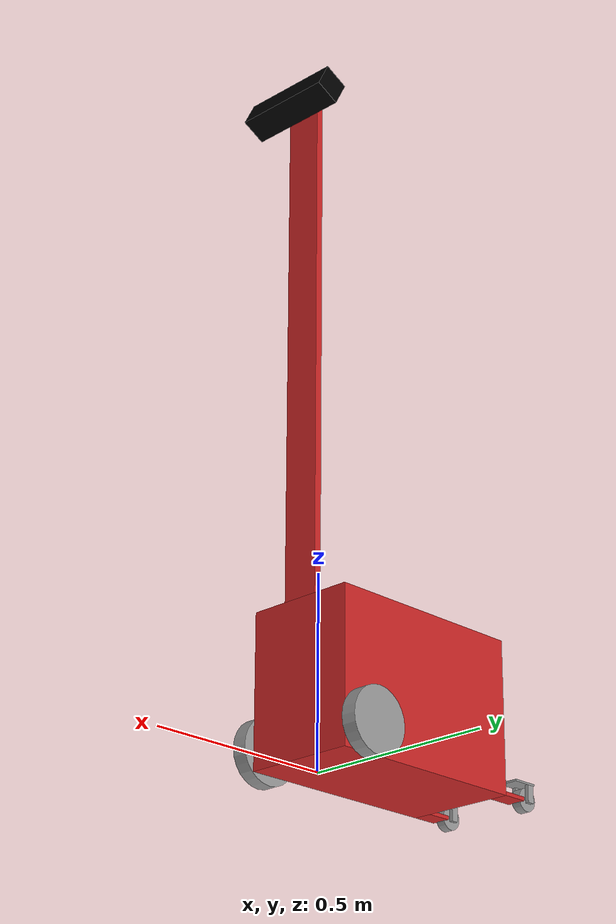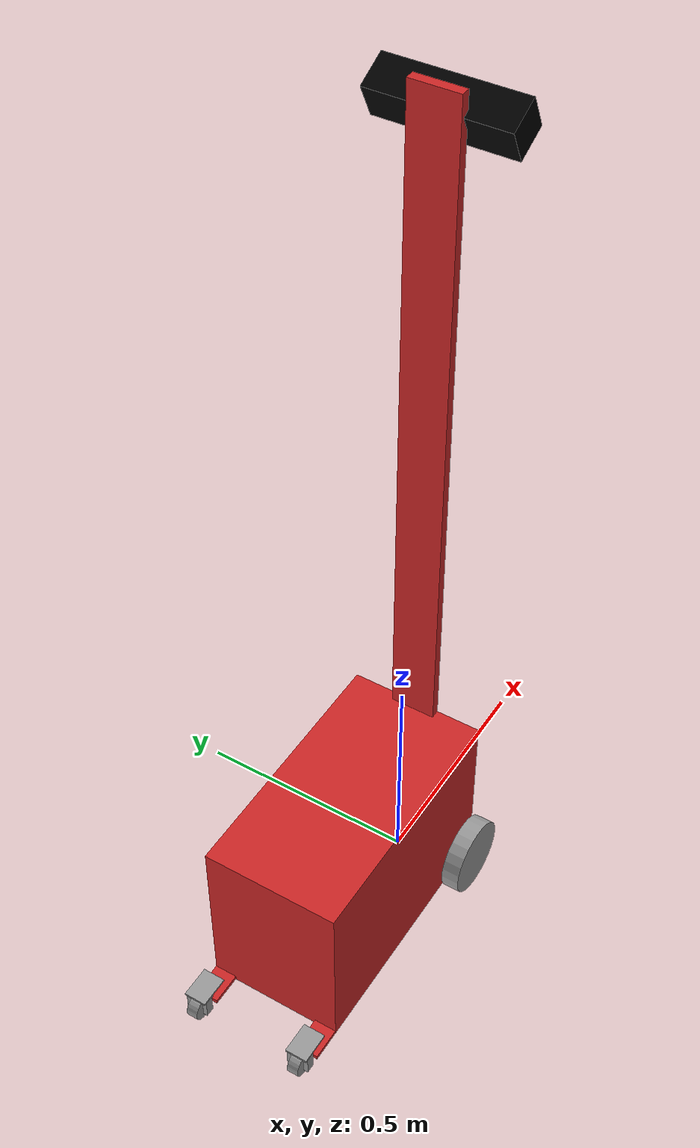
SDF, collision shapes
<?xml version='1.0'?>
<sdf version='1.6'>
  <model name='UVC_robot'>
    <link name='chassis'>
      <pose frame=''>-0.22 0 0.22 0 -0 0</pose>
      <inertial>
        <mass>70</mass>
        <pose frame=''>0 0 0 0 -0 0</pose>
        <inertia>
          <ixx>1.45833</ixx>
          <iyy>2.82858</iyy>
          <izz>2.42025</izz>
          <ixy>0</ixy>
          <ixz>0</ixz>
          <iyz>0</iyz>
        </inertia>
      </inertial>
      <self_collide>0</self_collide>
      <enable_wind>0</enable_wind>
      <kinematic>0</kinematic>
      <gravity>1</gravity>
      <visual name='ModelPreview_1::chassis::visual_1'>
        <pose frame=''>0.275 0 0.92 0 -0 0</pose>
        <geometry>
          <box>
            <size>0.02 0.1 1.44</size>
          </box>
        </geometry>
        <transparency>0</transparency>
        <cast_shadows>1</cast_shadows>
        <material>
          <shader type='vertex'>
            <normal_map>__default__</normal_map>
          </shader>
          <script>
            <name>Gazebo/Red</name>
            <uri>__default__</uri>
          </script>
          <ambient>0.3 0.3 0.3 1</ambient>
          <diffuse>0.7 0.7 0.7 1</diffuse>
          <specular>0.01 0.01 0.01 1</specular>
          <emissive>0 0 0 1</emissive>
        </material>
      </visual>
      <visual name='ModelPreview_1::chassis::visual_2'>
        <pose frame=''>-0.32 0.125 -0.195 0 -0 0</pose>
        <geometry>
          <box>
            <size>0.07 0.05 0.01</size>
          </box>
        </geometry>
        <transparency>0</transparency>
        <cast_shadows>1</cast_shadows>
        <material>
          <shader type='vertex'>
            <normal_map>__default__</normal_map>
          </shader>
          <script>
            <name>Gazebo/Red</name>
            <uri>__default__</uri>
          </script>
          <ambient>0.3 0.3 0.3 1</ambient>
          <diffuse>0.7 0.7 0.7 0.7</diffuse>
          <specular>0.01 0.01 0.01 1</specular>
          <emissive>0 0 0 1</emissive>
        </material>
      </visual>
      <visual name='visual'>
        <pose frame=''>0 0 0 0 -0 0</pose>
        <geometry>
          <box>
            <size>0.57 0.3 0.4</size>
          </box>
        </geometry>
        <transparency>0</transparency>
        <cast_shadows>1</cast_shadows>
        <material>
          <shader type='vertex'>
            <normal_map>__default__</normal_map>
          </shader>
          <script>
            <name>Gazebo/Grey</name>
            <uri>__default__</uri>
          </script>
          <ambient>0.3 0.3 0.3 1</ambient>
          <diffuse>0.7 0.7 0.7 1</diffuse>
          <specular>0.01 0.01 0.01 1</specular>
          <emissive>0 0 0 1</emissive>
        </material>
      </visual>
      <visual name='ModelPreview_1::chassis::visual_3'>
        <pose frame=''>-0.32 -0.125 -0.195 0 -0 0</pose>
        <geometry>
          <box>
            <size>0.07 0.05 0.01</size>
          </box>
        </geometry>
        <transparency>0</transparency>
        <cast_shadows>1</cast_shadows>
        <material>
          <shader type='vertex'>
            <normal_map>__default__</normal_map>
          </shader>
          <script>
            <name>Gazebo/Red</name>
            <uri>__default__</uri>
          </script>
          <ambient>0.3 0.3 0.3 1</ambient>
          <diffuse>0.7 0.7 0.7 1</diffuse>
          <specular>0.01 0.01 0.01 1</specular>
          <emissive>0 0 0 1</emissive>
        </material>
      </visual>
      <collision name='collision_2'>
        <laser_retro>0</laser_retro>
        <max_contacts>10</max_contacts>
        <pose frame=''>-0.32 -0.125 -0.195 0 -0 0</pose>
        <geometry>
          <box>
            <size>0.07 0.05 0.01</size>
          </box>
        </geometry>
        <surface>
          <friction>
            <ode>
              <mu>1</mu>
              <mu2>1</mu2>
              <fdir1>0 0 0</fdir1>
              <slip1>0</slip1>
              <slip2>0</slip2>
            </ode>
            <torsional>
              <coefficient>1</coefficient>
              <patch_radius>0</patch_radius>
              <surface_radius>0</surface_radius>
              <use_patch_radius>1</use_patch_radius>
              <ode>
                <slip>0</slip>
              </ode>
            </torsional>
          </friction>
          <bounce>
            <restitution_coefficient>0</restitution_coefficient>
            <threshold>1e+06</threshold>
          </bounce>
          <contact>
            <collide_without_contact>0</collide_without_contact>
            <collide_without_contact_bitmask>1</collide_without_contact_bitmask>
            <collide_bitmask>1</collide_bitmask>
            <ode>
              <soft_cfm>0</soft_cfm>
              <soft_erp>0.2</soft_erp>
              <kp>1e+13</kp>
              <kd>1</kd>
              <max_vel>0.01</max_vel>
              <min_depth>0</min_depth>
            </ode>
            <bullet>
              <split_impulse>1</split_impulse>
              <split_impulse_penetration_threshold>-0.01</split_impulse_penetration_threshold>
              <soft_cfm>0</soft_cfm>
              <soft_erp>0.2</soft_erp>
              <kp>1e+13</kp>
              <kd>1</kd>
            </bullet>
          </contact>
        </surface>
      </collision>
      <collision name='collision'>
        <laser_retro>0</laser_retro>
        <max_contacts>10</max_contacts>
        <pose frame=''>0 0 0 0 -0 0</pose>
        <geometry>
          <box>
            <size>0.57 0.3 0.4</size>
          </box>
        </geometry>
        <surface>
          <friction>
            <ode>
              <mu>1</mu>
              <mu2>1</mu2>
              <fdir1>0 0 0</fdir1>
              <slip1>0</slip1>
              <slip2>0</slip2>
            </ode>
            <torsional>
              <coefficient>1</coefficient>
              <patch_radius>0</patch_radius>
              <surface_radius>0</surface_radius>
              <use_patch_radius>1</use_patch_radius>
              <ode>
                <slip>0</slip>
              </ode>
            </torsional>
          </friction>
          <bounce>
            <restitution_coefficient>0</restitution_coefficient>
            <threshold>1e+06</threshold>
          </bounce>
          <contact>
            <collide_without_contact>0</collide_without_contact>
            <collide_without_contact_bitmask>1</collide_without_contact_bitmask>
            <collide_bitmask>1</collide_bitmask>
            <ode>
              <soft_cfm>0</soft_cfm>
              <soft_erp>0.2</soft_erp>
              <kp>1e+13</kp>
              <kd>1</kd>
              <max_vel>0.01</max_vel>
              <min_depth>0</min_depth>
            </ode>
            <bullet>
              <split_impulse>1</split_impulse>
              <split_impulse_penetration_threshold>-0.01</split_impulse_penetration_threshold>
              <soft_cfm>0</soft_cfm>
              <soft_erp>0.2</soft_erp>
              <kp>1e+13</kp>
              <kd>1</kd>
            </bullet>
          </contact>
        </surface>
      </collision>
      <collision name='collision_1'>
        <laser_retro>0</laser_retro>
        <max_contacts>10</max_contacts>
        <pose frame=''>0.275 0 0.92 0 -0 0</pose>
        <geometry>
          <box>
            <size>0.02 0.1 1.44</size>
          </box>
        </geometry>
        <surface>
          <friction>
            <ode>
              <mu>1</mu>
              <mu2>1</mu2>
              <fdir1>0 0 0</fdir1>
              <slip1>0</slip1>
              <slip2>0</slip2>
            </ode>
            <torsional>
              <coefficient>1</coefficient>
              <patch_radius>0</patch_radius>
              <surface_radius>0</surface_radius>
              <use_patch_radius>1</use_patch_radius>
              <ode>
                <slip>0</slip>
              </ode>
            </torsional>
          </friction>
          <bounce>
            <restitution_coefficient>0</restitution_coefficient>
            <threshold>1e+06</threshold>
          </bounce>
          <contact>
            <collide_without_contact>0</collide_without_contact>
            <collide_without_contact_bitmask>1</collide_without_contact_bitmask>
            <collide_bitmask>1</collide_bitmask>
            <ode>
              <soft_cfm>0</soft_cfm>
              <soft_erp>0.2</soft_erp>
              <kp>1e+13</kp>
              <kd>1</kd>
              <max_vel>0.01</max_vel>
              <min_depth>0</min_depth>
            </ode>
            <bullet>
              <split_impulse>1</split_impulse>
              <split_impulse_penetration_threshold>-0.01</split_impulse_penetration_threshold>
              <soft_cfm>0</soft_cfm>
              <soft_erp>0.2</soft_erp>
              <kp>1e+13</kp>
              <kd>1</kd>
            </bullet>
          </contact>
        </surface>
      </collision>
      <collision name='collision_3'>
        <laser_retro>0</laser_retro>
        <max_contacts>10</max_contacts>
        <pose frame=''>-0.32 0.125 -0.195 0 -0 0</pose>
        <geometry>
          <box>
            <size>0.07 0.05 0.01</size>
          </box>
        </geometry>
        <surface>
          <friction>
            <ode>
              <mu>1</mu>
              <mu2>1</mu2>
              <fdir1>0 0 0</fdir1>
              <slip1>0</slip1>
              <slip2>0</slip2>
            </ode>
            <torsional>
              <coefficient>1</coefficient>
              <patch_radius>0</patch_radius>
              <surface_radius>0</surface_radius>
              <use_patch_radius>1</use_patch_radius>
              <ode>
                <slip>0</slip>
              </ode>
            </torsional>
          </friction>
          <bounce>
            <restitution_coefficient>0</restitution_coefficient>
            <threshold>1e+06</threshold>
          </bounce>
          <contact>
            <collide_without_contact>0</collide_without_contact>
            <collide_without_contact_bitmask>1</collide_without_contact_bitmask>
            <collide_bitmask>1</collide_bitmask>
            <ode>
              <soft_cfm>0</soft_cfm>
              <soft_erp>0.2</soft_erp>
              <kp>1e+13</kp>
              <kd>1</kd>
              <max_vel>0.01</max_vel>
              <min_depth>0</min_depth>
            </ode>
            <bullet>
              <split_impulse>1</split_impulse>
              <split_impulse_penetration_threshold>-0.01</split_impulse_penetration_threshold>
              <soft_cfm>0</soft_cfm>
              <soft_erp>0.2</soft_erp>
              <kp>1e+13</kp>
              <kd>1</kd>
            </bullet>
          </contact>
        </surface>
      </collision>
    </link>
    <link name='kinect_camera'>
      <inertial>
        <mass>0.1</mass>
        <inertia>
          <ixx>1</ixx>
          <ixy>0</ixy>
          <ixz>0</ixz>
          <iyy>1</iyy>
          <iyz>0</iyz>
          <izz>1</izz>
        </inertia>
        <pose frame=''>0 0 0 0 -0 0</pose>
      </inertial>
      <sensor name='camera' type='depth'>
        <update_rate>20</update_rate>
        <camera name='__default__'>
          <horizontal_fov>1.0472</horizontal_fov>
          <image>
            <width>640</width>
            <height>480</height>
            <format>R8G8B8</format>
          </image>
          <clip>
            <near>0.05</near>
            <far>3</far>
          </clip>
        </camera>
        <plugin name='camera_plugin' filename='libgazebo_ros_openni_kinect.so'>
          <baseline>0.2</baseline>
          <alwaysOn>1</alwaysOn>
          <updateRate>0.0</updateRate>
          <cameraName>camera_ir</cameraName>
          <imageTopicName>/d435/color/image_raw</imageTopicName>
          <cameraInfoTopicName>/d435/color/camera_info</cameraInfoTopicName>
          <depthImageTopicName>/d435/depth/image_rect_raw</depthImageTopicName>
          <depthImageCameraInfoTopicName>/d435/depth/camera_info</depthImageCameraInfoTopicName>
          <pointCloudTopicName>/d435/depth/color/points</pointCloudTopicName>
          <frameName>d435_link</frameName>
          <pointCloudCutoff>0.5</pointCloudCutoff>
          <pointCloudCutoffMax>3.0</pointCloudCutoffMax>
          <distortionK1>0</distortionK1>
          <distortionK2>0</distortionK2>
          <distortionK3>0</distortionK3>
          <distortionT1>0</distortionT1>
          <distortionT2>0</distortionT2>
          <CxPrime>0</CxPrime>
          <Cx>0</Cx>
          <Cy>0</Cy>
          <focalLength>0</focalLength>
          <hackBaseline>0</hackBaseline>
        </plugin>
      </sensor>
      <self_collide>0</self_collide>
      <enable_wind>0</enable_wind>
      <kinematic>0</kinematic>
      <pose frame=''>0.1 0 1.8 0 1.105 0</pose>
      <gravity>1</gravity>
      <visual name='visual'>
        <geometry>
          <mesh>
            <uri>model://UVC_robot/meshes/kinect.dae</uri>
          </mesh>
        </geometry>
        <pose frame=''>0 0 0 0 -0 0</pose>
        <transparency>0</transparency>
        <cast_shadows>1</cast_shadows>
        <material>
          <shader type='vertex'>
            <normal_map>__default__</normal_map>
          </shader>
          <script>
            <name>ModelPreview_1::kinect_camera::visual_MATERIAL_</name>
            <uri>__default__</uri>
          </script>
          <ambient>0 0 0 1</ambient>
          <diffuse>0 0 0 1</diffuse>
          <specular>0 0 0 1</specular>
          <emissive>0 0 0 1</emissive>
        </material>
      </visual>
      <collision name='collision'>
        <laser_retro>0</laser_retro>
        <max_contacts>10</max_contacts>
        <pose frame=''>0 0 0 0 -0 0</pose>
        <geometry>
          <box>
            <size>0.073 0.276 0.072</size>
          </box>
        </geometry>
        <surface>
          <friction>
            <ode>
              <mu>1</mu>
              <mu2>1</mu2>
              <fdir1>0 0 0</fdir1>
              <slip1>0</slip1>
              <slip2>0</slip2>
            </ode>
            <torsional>
              <coefficient>1</coefficient>
              <patch_radius>0</patch_radius>
              <surface_radius>0</surface_radius>
              <use_patch_radius>1</use_patch_radius>
              <ode>
                <slip>0</slip>
              </ode>
            </torsional>
          </friction>
          <bounce>
            <restitution_coefficient>0</restitution_coefficient>
            <threshold>1e+06</threshold>
          </bounce>
          <contact>
            <collide_without_contact>0</collide_without_contact>
            <collide_without_contact_bitmask>1</collide_without_contact_bitmask>
            <collide_bitmask>1</collide_bitmask>
            <ode>
              <soft_cfm>0</soft_cfm>
              <soft_erp>0.2</soft_erp>
              <kp>1e+13</kp>
              <kd>1</kd>
              <max_vel>0.01</max_vel>
              <min_depth>0</min_depth>
            </ode>
            <bullet>
              <split_impulse>1</split_impulse>
              <split_impulse_penetration_threshold>-0.01</split_impulse_penetration_threshold>
              <soft_cfm>0</soft_cfm>
              <soft_erp>0.2</soft_erp>
              <kp>1e+13</kp>
              <kd>1</kd>
            </bullet>
          </contact>
        </surface>
      </collision>
    </link>
    <link name='left_caster_wheel'>
      <inertial>
        <mass>0.5</mass>
        <inertia>
          <ixx>0.00013854</ixx>
          <ixy>0</ixy>
          <ixz>0</ixz>
          <iyy>0.00013854</iyy>
          <iyz>0</iyz>
          <izz>0.000225</izz>
        </inertia>
        <pose frame=''>0 0 0 0 -0 0</pose>
      </inertial>
      <pose frame=''>-0.6 0.125002 0.03 -1.5708 0 0</pose>
      <gravity>1</gravity>
      <self_collide>0</self_collide>
      <kinematic>0</kinematic>
      <enable_wind>0</enable_wind>
      <visual name='visual_0'>
        <pose frame=''>0 0 0 0 -0 0</pose>
        <geometry>
          <cylinder>
            <radius>0.03</radius>
            <length>0.025</length>
          </cylinder>
        </geometry>
        <material>
          <lighting>1</lighting>
          <script>
            <uri>file://media/materials/scripts/gazebo.material</uri>
            <name>Gazebo/Grey</name>
          </script>
          <shader type='vertex'>
            <normal_map>__default__</normal_map>
          </shader>
          <ambient>0.8 0.8 0.8 1</ambient>
          <diffuse>0.7 0.7 0.7 1</diffuse>
          <specular>0.01 0.01 0.01 1</specular>
          <emissive>0 0 0 1</emissive>
        </material>
        <transparency>0</transparency>
        <cast_shadows>1</cast_shadows>
      </visual>
      <collision name='collision'>
        <laser_retro>0</laser_retro>
        <max_contacts>10</max_contacts>
        <pose frame=''>0 0 0 0 -0 0</pose>
        <geometry>
          <cylinder>
            <radius>0.03</radius>
            <length>0.025</length>
          </cylinder>
        </geometry>
        <surface>
          <friction>
            <ode>
              <mu>1</mu>
              <mu2>1</mu2>
              <fdir1>0 0 0</fdir1>
              <slip1>0</slip1>
              <slip2>0</slip2>
            </ode>
            <torsional>
              <coefficient>1</coefficient>
              <patch_radius>0</patch_radius>
              <surface_radius>0</surface_radius>
              <use_patch_radius>1</use_patch_radius>
              <ode>
                <slip>0</slip>
              </ode>
            </torsional>
          </friction>
          <bounce>
            <restitution_coefficient>0</restitution_coefficient>
            <threshold>1e+06</threshold>
          </bounce>
          <contact>
            <collide_without_contact>0</collide_without_contact>
            <collide_without_contact_bitmask>1</collide_without_contact_bitmask>
            <collide_bitmask>1</collide_bitmask>
            <ode>
              <soft_cfm>0</soft_cfm>
              <soft_erp>0.2</soft_erp>
              <kp>1e+13</kp>
              <kd>1</kd>
              <max_vel>0.01</max_vel>
              <min_depth>0</min_depth>
            </ode>
            <bullet>
              <split_impulse>1</split_impulse>
              <split_impulse_penetration_threshold>-0.01</split_impulse_penetration_threshold>
              <soft_cfm>0</soft_cfm>
              <soft_erp>0.2</soft_erp>
              <kp>1e+13</kp>
              <kd>1</kd>
            </bullet>
          </contact>
        </surface>
      </collision>
    </link>
    <link name='left_caster_wheel_holder'>
      <inertial>
        <mass>0.5</mass>
        <inertia>
          <ixx>0.00010521</ixx>
          <ixy>0</ixy>
          <ixz>0</ixz>
          <iyy>0.00020521</iyy>
          <iyz>0</iyz>
          <izz>0.00030833</izz>
        </inertia>
        <pose frame=''>0 0 0 0 -0 0</pose>
      </inertial>
      <pose frame=''>-0.58 0.125 0.065 0 -0 3.1415</pose>
      <gravity>1</gravity>
      <self_collide>0</self_collide>
      <kinematic>0</kinematic>
      <enable_wind>0</enable_wind>
      <visual name='visual_2'>
        <pose frame=''>0.02 -0.02 -0.0225 0 -0 0</pose>
        <geometry>
          <box>
            <size>0.02 0.01 0.045</size>
          </box>
        </geometry>
        <material>
          <lighting>1</lighting>
          <script>
            <uri>file://media/materials/scripts/gazebo.material</uri>
            <name>Gazebo/Grey</name>
          </script>
          <shader type='vertex'>
            <normal_map>__default__</normal_map>
          </shader>
          <ambient>0.3 0.3 0.3 1</ambient>
          <diffuse>0.7 0.7 0.7 1</diffuse>
          <specular>0.01 0.01 0.01 1</specular>
          <emissive>0 0 0 1</emissive>
        </material>
        <transparency>0</transparency>
        <cast_shadows>1</cast_shadows>
      </visual>
      <visual name='visual_3'>
        <pose frame=''>0.02 0.02 -0.0225 0 -0 0</pose>
        <geometry>
          <box>
            <size>0.02 0.01 0.045</size>
          </box>
        </geometry>
        <material>
          <lighting>1</lighting>
          <script>
            <uri>file://media/materials/scripts/gazebo.material</uri>
            <name>Gazebo/Grey</name>
          </script>
          <shader type='vertex'>
            <normal_map>__default__</normal_map>
          </shader>
          <ambient>0.3 0.3 0.3 1</ambient>
          <diffuse>0.7 0.7 0.7 1</diffuse>
          <specular>0.01 0.01 0.01 1</specular>
          <emissive>0 0 0 1</emissive>
        </material>
        <transparency>0</transparency>
        <cast_shadows>1</cast_shadows>
      </visual>
      <visual name='visual'>
        <pose frame=''>0 0 0.0025 0 -0 0</pose>
        <geometry>
          <box>
            <size>0.07 0.05 0.005</size>
          </box>
        </geometry>
        <material>
          <lighting>1</lighting>
          <script>
            <uri>file://media/materials/scripts/gazebo.material</uri>
            <name>Gazebo/Grey</name>
          </script>
          <shader type='vertex'>
            <normal_map>__default__</normal_map>
          </shader>
          <ambient>0.3 0.3 0.3 1</ambient>
          <diffuse>0.7 0.7 0.7 1</diffuse>
          <specular>0.01 0.01 0.01 1</specular>
          <emissive>0 0 0 1</emissive>
        </material>
        <transparency>0</transparency>
        <cast_shadows>1</cast_shadows>
      </visual>
      <collision name='collision'>
        <laser_retro>0</laser_retro>
        <max_contacts>10</max_contacts>
        <pose frame=''>0 0 0.0025 0 -0 0</pose>
        <geometry>
          <box>
            <size>0.07 0.05 0.005</size>
          </box>
        </geometry>
        <surface>
          <friction>
            <ode>
              <mu>1</mu>
              <mu2>1</mu2>
              <fdir1>0 0 0</fdir1>
              <slip1>0</slip1>
              <slip2>0</slip2>
            </ode>
            <torsional>
              <coefficient>1</coefficient>
              <patch_radius>0</patch_radius>
              <surface_radius>0</surface_radius>
              <use_patch_radius>1</use_patch_radius>
              <ode>
                <slip>0</slip>
              </ode>
            </torsional>
          </friction>
          <bounce>
            <restitution_coefficient>0</restitution_coefficient>
            <threshold>1e+06</threshold>
          </bounce>
          <contact>
            <collide_without_contact>0</collide_without_contact>
            <collide_without_contact_bitmask>1</collide_without_contact_bitmask>
            <collide_bitmask>1</collide_bitmask>
            <ode>
              <soft_cfm>0</soft_cfm>
              <soft_erp>0.2</soft_erp>
              <kp>1e+13</kp>
              <kd>1</kd>
              <max_vel>0.01</max_vel>
              <min_depth>0</min_depth>
            </ode>
            <bullet>
              <split_impulse>1</split_impulse>
              <split_impulse_penetration_threshold>-0.01</split_impulse_penetration_threshold>
              <soft_cfm>0</soft_cfm>
              <soft_erp>0.2</soft_erp>
              <kp>1e+13</kp>
              <kd>1</kd>
            </bullet>
          </contact>
        </surface>
      </collision>
      <collision name='collision_1'>
        <laser_retro>0</laser_retro>
        <max_contacts>10</max_contacts>
        <pose frame=''>0.02 -0.02 -0.0225 0 -0 0</pose>
        <geometry>
          <box>
            <size>0.02 0.01 0.045</size>
          </box>
        </geometry>
        <surface>
          <friction>
            <ode>
              <mu>1</mu>
              <mu2>1</mu2>
              <fdir1>0 0 0</fdir1>
              <slip1>0</slip1>
              <slip2>0</slip2>
            </ode>
            <torsional>
              <coefficient>1</coefficient>
              <patch_radius>0</patch_radius>
              <surface_radius>0</surface_radius>
              <use_patch_radius>1</use_patch_radius>
              <ode>
                <slip>0</slip>
              </ode>
            </torsional>
          </friction>
          <bounce>
            <restitution_coefficient>0</restitution_coefficient>
            <threshold>1e+06</threshold>
          </bounce>
          <contact>
            <collide_without_contact>0</collide_without_contact>
            <collide_without_contact_bitmask>1</collide_without_contact_bitmask>
            <collide_bitmask>1</collide_bitmask>
            <ode>
              <soft_cfm>0</soft_cfm>
              <soft_erp>0.2</soft_erp>
              <kp>1e+13</kp>
              <kd>1</kd>
              <max_vel>0.01</max_vel>
              <min_depth>0</min_depth>
            </ode>
            <bullet>
              <split_impulse>1</split_impulse>
              <split_impulse_penetration_threshold>-0.01</split_impulse_penetration_threshold>
              <soft_cfm>0</soft_cfm>
              <soft_erp>0.2</soft_erp>
              <kp>1e+13</kp>
              <kd>1</kd>
            </bullet>
          </contact>
        </surface>
      </collision>
      <collision name='collision_2'>
        <laser_retro>0</laser_retro>
        <max_contacts>10</max_contacts>
        <pose frame=''>0.02 0.02 -0.0225 0 -0 0</pose>
        <geometry>
          <box>
            <size>0.02 0.01 0.045</size>
          </box>
        </geometry>
        <surface>
          <friction>
            <ode>
              <mu>1</mu>
              <mu2>1</mu2>
              <fdir1>0 0 0</fdir1>
              <slip1>0</slip1>
              <slip2>0</slip2>
            </ode>
            <torsional>
              <coefficient>1</coefficient>
              <patch_radius>0</patch_radius>
              <surface_radius>0</surface_radius>
              <use_patch_radius>1</use_patch_radius>
              <ode>
                <slip>0</slip>
              </ode>
            </torsional>
          </friction>
          <bounce>
            <restitution_coefficient>0</restitution_coefficient>
            <threshold>1e+06</threshold>
          </bounce>
          <contact>
            <collide_without_contact>0</collide_without_contact>
            <collide_without_contact_bitmask>1</collide_without_contact_bitmask>
            <collide_bitmask>1</collide_bitmask>
            <ode>
              <soft_cfm>0</soft_cfm>
              <soft_erp>0.2</soft_erp>
              <kp>1e+13</kp>
              <kd>1</kd>
              <max_vel>0.01</max_vel>
              <min_depth>0</min_depth>
            </ode>
            <bullet>
              <split_impulse>1</split_impulse>
              <split_impulse_penetration_threshold>-0.01</split_impulse_penetration_threshold>
              <soft_cfm>0</soft_cfm>
              <soft_erp>0.2</soft_erp>
              <kp>1e+13</kp>
              <kd>1</kd>
            </bullet>
          </contact>
        </surface>
      </collision>
    </link>
    <link name='left_wheel'>
      <pose frame=''>0 0.18 0.085 1.55189 1.57079 3.12277</pose>
      <self_collide>0</self_collide>
      <inertial>
        <inertia>
          <ixx>0.00426708</ixx>
          <ixy>0</ixy>
          <ixz>0</ixz>
          <iyy>0.00426708</iyy>
          <iyz>0</iyz>
          <izz>0.0079475</izz>
        </inertia>
        <mass>2.2</mass>
        <pose frame=''>0 0 0 0 -0 0</pose>
      </inertial>
      <enable_wind>0</enable_wind>
      <kinematic>0</kinematic>
      <gravity>1</gravity>
      <visual name='visual'>
        <geometry>
          <cylinder>
            <radius>0.085</radius>
            <length>0.04</length>
          </cylinder>
        </geometry>
        <pose frame=''>0 0 0 0 -0 0</pose>
        <transparency>0</transparency>
        <cast_shadows>1</cast_shadows>
        <material>
          <shader type='vertex'>
            <normal_map>__default__</normal_map>
          </shader>
          <script>
            <name>Gazebo/Grey</name>
            <uri>__default__</uri>
          </script>
          <ambient>0 0 0 1</ambient>
          <diffuse>0 0 0 1</diffuse>
          <specular>0 0 0 1</specular>
          <emissive>0 0 0 1</emissive>
        </material>
      </visual>
      <collision name='collision'>
        <laser_retro>0</laser_retro>
        <max_contacts>10</max_contacts>
        <pose frame=''>0 0 0 0 -0 0</pose>
        <geometry>
          <cylinder>
            <radius>0.085</radius>
            <length>0.04</length>
          </cylinder>
        </geometry>
        <surface>
          <friction>
            <ode>
              <mu>1</mu>
              <mu2>1</mu2>
              <fdir1>0 0 0</fdir1>
              <slip1>0</slip1>
              <slip2>0</slip2>
            </ode>
            <torsional>
              <coefficient>1</coefficient>
              <patch_radius>0</patch_radius>
              <surface_radius>0</surface_radius>
              <use_patch_radius>1</use_patch_radius>
              <ode>
                <slip>0</slip>
              </ode>
            </torsional>
          </friction>
          <bounce>
            <restitution_coefficient>0</restitution_coefficient>
            <threshold>1e+06</threshold>
          </bounce>
          <contact>
            <collide_without_contact>0</collide_without_contact>
            <collide_without_contact_bitmask>1</collide_without_contact_bitmask>
            <collide_bitmask>1</collide_bitmask>
            <ode>
              <soft_cfm>0</soft_cfm>
              <soft_erp>0.2</soft_erp>
              <kp>1e+13</kp>
              <kd>1</kd>
              <max_vel>0.01</max_vel>
              <min_depth>0</min_depth>
            </ode>
            <bullet>
              <split_impulse>1</split_impulse>
              <split_impulse_penetration_threshold>-0.01</split_impulse_penetration_threshold>
              <soft_cfm>0</soft_cfm>
              <soft_erp>0.2</soft_erp>
              <kp>1e+13</kp>
              <kd>1</kd>
            </bullet>
          </contact>
        </surface>
      </collision>
    </link>
    <link name='right_caster_wheel'>
      <inertial>
        <mass>0.5</mass>
        <inertia>
          <ixx>0.00013854</ixx>
          <ixy>0</ixy>
          <ixz>0</ixz>
          <iyy>0.00013854</iyy>
          <iyz>0</iyz>
          <izz>0.000225</izz>
        </inertia>
        <pose frame=''>0 0 0 0 -0 0</pose>
      </inertial>
      <pose frame=''>-0.6 -0.124998 0.03 -1.5708 0 0</pose>
      <gravity>1</gravity>
      <self_collide>0</self_collide>
      <kinematic>0</kinematic>
      <enable_wind>0</enable_wind>
      <visual name='visual'>
        <pose frame=''>0 0 0 0 -0 0</pose>
        <geometry>
          <cylinder>
            <radius>0.03</radius>
            <length>0.025</length>
          </cylinder>
        </geometry>
        <material>
          <lighting>1</lighting>
          <script>
            <uri>file://media/materials/scripts/gazebo.material</uri>
            <name>Gazebo/Grey</name>
          </script>
          <shader type='vertex'>
            <normal_map>__default__</normal_map>
          </shader>
          <ambient>0.8 0.8 0.8 1</ambient>
          <diffuse>0.7 0.7 0.7 1</diffuse>
          <specular>0.01 0.01 0.01 1</specular>
          <emissive>0 0 0 1</emissive>
        </material>
        <transparency>0</transparency>
        <cast_shadows>1</cast_shadows>
      </visual>
      <collision name='collision'>
        <laser_retro>0</laser_retro>
        <max_contacts>10</max_contacts>
        <pose frame=''>0 0 0 0 -0 0</pose>
        <geometry>
          <cylinder>
            <radius>0.03</radius>
            <length>0.025</length>
          </cylinder>
        </geometry>
        <surface>
          <friction>
            <ode>
              <mu>1</mu>
              <mu2>1</mu2>
              <fdir1>0 0 0</fdir1>
              <slip1>0</slip1>
              <slip2>0</slip2>
            </ode>
            <torsional>
              <coefficient>1</coefficient>
              <patch_radius>0</patch_radius>
              <surface_radius>0</surface_radius>
              <use_patch_radius>1</use_patch_radius>
              <ode>
                <slip>0</slip>
              </ode>
            </torsional>
          </friction>
          <bounce>
            <restitution_coefficient>0</restitution_coefficient>
            <threshold>1e+06</threshold>
          </bounce>
          <contact>
            <collide_without_contact>0</collide_without_contact>
            <collide_without_contact_bitmask>1</collide_without_contact_bitmask>
            <collide_bitmask>1</collide_bitmask>
            <ode>
              <soft_cfm>0</soft_cfm>
              <soft_erp>0.2</soft_erp>
              <kp>1e+13</kp>
              <kd>1</kd>
              <max_vel>0.01</max_vel>
              <min_depth>0</min_depth>
            </ode>
            <bullet>
              <split_impulse>1</split_impulse>
              <split_impulse_penetration_threshold>-0.01</split_impulse_penetration_threshold>
              <soft_cfm>0</soft_cfm>
              <soft_erp>0.2</soft_erp>
              <kp>1e+13</kp>
              <kd>1</kd>
            </bullet>
          </contact>
        </surface>
      </collision>
    </link>
    <link name='right_caster_wheel_holder'>
      <inertial>
        <mass>0.5</mass>
        <inertia>
          <ixx>8.854e-05</ixx>
          <ixy>0</ixy>
          <ixz>0</ixz>
          <iyy>0.00010104</iyy>
          <iyz>0</iyz>
          <izz>2.083e-05</izz>
        </inertia>
        <pose frame=''>0 0 0 0 -0 0</pose>
      </inertial>
      <pose frame=''>-0.58 -0.125 0.065 0 -0 3.1415</pose>
      <gravity>1</gravity>
      <self_collide>0</self_collide>
      <kinematic>0</kinematic>
      <enable_wind>0</enable_wind>
      <visual name='ModelPreview_1::link_0::visual_2'>
        <pose frame=''>0.02 -0.02 -0.0225 0 -0 0</pose>
        <geometry>
          <box>
            <size>0.02 0.01 0.045</size>
          </box>
        </geometry>
        <material>
          <lighting>1</lighting>
          <script>
            <uri>file://media/materials/scripts/gazebo.material</uri>
            <name>Gazebo/Grey</name>
          </script>
          <shader type='vertex'>
            <normal_map>__default__</normal_map>
          </shader>
          <ambient>0.3 0.3 0.3 1</ambient>
          <diffuse>0.7 0.7 0.7 1</diffuse>
          <specular>0.01 0.01 0.01 1</specular>
          <emissive>0 0 0 1</emissive>
        </material>
        <transparency>0</transparency>
        <cast_shadows>1</cast_shadows>
      </visual>
      <visual name='visual'>
        <pose frame=''>0 0 0.0025 0 -0 0</pose>
        <geometry>
          <box>
            <size>0.07 0.05 0.005</size>
          </box>
        </geometry>
        <material>
          <lighting>1</lighting>
          <script>
            <uri>file://media/materials/scripts/gazebo.material</uri>
            <name>Gazebo/Grey</name>
          </script>
          <shader type='vertex'>
            <normal_map>__default__</normal_map>
          </shader>
          <ambient>0.3 0.3 0.3 1</ambient>
          <diffuse>0.7 0.7 0.7 1</diffuse>
          <specular>0.01 0.01 0.01 1</specular>
          <emissive>0 0 0 1</emissive>
        </material>
        <transparency>0</transparency>
        <cast_shadows>1</cast_shadows>
      </visual>
      <visual name='ModelPreview_1::link_0::visual_3'>
        <pose frame=''>0.02 0.02 -0.0225 0 -0 0</pose>
        <geometry>
          <box>
            <size>0.02 0.01 0.045</size>
          </box>
        </geometry>
        <material>
          <lighting>1</lighting>
          <script>
            <uri>file://media/materials/scripts/gazebo.material</uri>
            <name>Gazebo/Grey</name>
          </script>
          <shader type='vertex'>
            <normal_map>__default__</normal_map>
          </shader>
          <ambient>0.3 0.3 0.3 1</ambient>
          <diffuse>0.7 0.7 0.7 1</diffuse>
          <specular>0.01 0.01 0.01 1</specular>
          <emissive>0 0 0 1</emissive>
        </material>
        <transparency>0</transparency>
        <cast_shadows>1</cast_shadows>
      </visual>
      <collision name='collision_1'>
        <laser_retro>0</laser_retro>
        <max_contacts>10</max_contacts>
        <pose frame=''>0.02 -0.02 -0.0225 0 -0 0</pose>
        <geometry>
          <box>
            <size>0.02 0.01 0.045</size>
          </box>
        </geometry>
        <surface>
          <friction>
            <ode>
              <mu>1</mu>
              <mu2>1</mu2>
              <fdir1>0 0 0</fdir1>
              <slip1>0</slip1>
              <slip2>0</slip2>
            </ode>
            <torsional>
              <coefficient>1</coefficient>
              <patch_radius>0</patch_radius>
              <surface_radius>0</surface_radius>
              <use_patch_radius>1</use_patch_radius>
              <ode>
                <slip>0</slip>
              </ode>
            </torsional>
          </friction>
          <bounce>
            <restitution_coefficient>0</restitution_coefficient>
            <threshold>1e+06</threshold>
          </bounce>
          <contact>
            <collide_without_contact>0</collide_without_contact>
            <collide_without_contact_bitmask>1</collide_without_contact_bitmask>
            <collide_bitmask>1</collide_bitmask>
            <ode>
              <soft_cfm>0</soft_cfm>
              <soft_erp>0.2</soft_erp>
              <kp>1e+13</kp>
              <kd>1</kd>
              <max_vel>0.01</max_vel>
              <min_depth>0</min_depth>
            </ode>
            <bullet>
              <split_impulse>1</split_impulse>
              <split_impulse_penetration_threshold>-0.01</split_impulse_penetration_threshold>
              <soft_cfm>0</soft_cfm>
              <soft_erp>0.2</soft_erp>
              <kp>1e+13</kp>
              <kd>1</kd>
            </bullet>
          </contact>
        </surface>
      </collision>
      <collision name='collision'>
        <laser_retro>0</laser_retro>
        <max_contacts>10</max_contacts>
        <pose frame=''>0 0 0.0025 0 -0 0</pose>
        <geometry>
          <box>
            <size>0.07 0.05 0.005</size>
          </box>
        </geometry>
        <surface>
          <friction>
            <ode>
              <mu>1</mu>
              <mu2>1</mu2>
              <fdir1>0 0 0</fdir1>
              <slip1>0</slip1>
              <slip2>0</slip2>
            </ode>
            <torsional>
              <coefficient>1</coefficient>
              <patch_radius>0</patch_radius>
              <surface_radius>0</surface_radius>
              <use_patch_radius>1</use_patch_radius>
              <ode>
                <slip>0</slip>
              </ode>
            </torsional>
          </friction>
          <bounce>
            <restitution_coefficient>0</restitution_coefficient>
            <threshold>1e+06</threshold>
          </bounce>
          <contact>
            <collide_without_contact>0</collide_without_contact>
            <collide_without_contact_bitmask>1</collide_without_contact_bitmask>
            <collide_bitmask>1</collide_bitmask>
            <ode>
              <soft_cfm>0</soft_cfm>
              <soft_erp>0.2</soft_erp>
              <kp>1e+13</kp>
              <kd>1</kd>
              <max_vel>0.01</max_vel>
              <min_depth>0</min_depth>
            </ode>
            <bullet>
              <split_impulse>1</split_impulse>
              <split_impulse_penetration_threshold>-0.01</split_impulse_penetration_threshold>
              <soft_cfm>0</soft_cfm>
              <soft_erp>0.2</soft_erp>
              <kp>1e+13</kp>
              <kd>1</kd>
            </bullet>
          </contact>
        </surface>
      </collision>
      <collision name='collision_2'>
        <laser_retro>0</laser_retro>
        <max_contacts>10</max_contacts>
        <pose frame=''>0.02 0.02 -0.0225 0 -0 0</pose>
        <geometry>
          <box>
            <size>0.02 0.01 0.045</size>
          </box>
        </geometry>
        <surface>
          <friction>
            <ode>
              <mu>1</mu>
              <mu2>1</mu2>
              <fdir1>0 0 0</fdir1>
              <slip1>0</slip1>
              <slip2>0</slip2>
            </ode>
            <torsional>
              <coefficient>1</coefficient>
              <patch_radius>0</patch_radius>
              <surface_radius>0</surface_radius>
              <use_patch_radius>1</use_patch_radius>
              <ode>
                <slip>0</slip>
              </ode>
            </torsional>
          </friction>
          <bounce>
            <restitution_coefficient>0</restitution_coefficient>
            <threshold>1e+06</threshold>
          </bounce>
          <contact>
            <collide_without_contact>0</collide_without_contact>
            <collide_without_contact_bitmask>1</collide_without_contact_bitmask>
            <collide_bitmask>1</collide_bitmask>
            <ode>
              <soft_cfm>0</soft_cfm>
              <soft_erp>0.2</soft_erp>
              <kp>1e+13</kp>
              <kd>1</kd>
              <max_vel>0.01</max_vel>
              <min_depth>0</min_depth>
            </ode>
            <bullet>
              <split_impulse>1</split_impulse>
              <split_impulse_penetration_threshold>-0.01</split_impulse_penetration_threshold>
              <soft_cfm>0</soft_cfm>
              <soft_erp>0.2</soft_erp>
              <kp>1e+13</kp>
              <kd>1</kd>
            </bullet>
          </contact>
        </surface>
      </collision>
    </link>
    <link name='right_wheel'>
      <pose frame=''>0 -0.18 0.085 1.55189 1.57079 3.12277</pose>
      <self_collide>0</self_collide>
      <inertial>
        <inertia>
          <ixx>0.00426708</ixx>
          <ixy>0</ixy>
          <ixz>0</ixz>
          <iyy>0.00426708</iyy>
          <iyz>0</iyz>
          <izz>0.0079475</izz>
        </inertia>
        <mass>2.2</mass>
        <pose frame=''>0 0 0 0 -0 0</pose>
      </inertial>
      <enable_wind>0</enable_wind>
      <kinematic>0</kinematic>
      <gravity>1</gravity>
      <visual name='visual'>
        <geometry>
          <cylinder>
            <radius>0.085</radius>
            <length>0.04</length>
          </cylinder>
        </geometry>
        <pose frame=''>0 0 0 0 -0 0</pose>
        <transparency>0</transparency>
        <cast_shadows>1</cast_shadows>
        <material>
          <shader type='vertex'>
            <normal_map>__default__</normal_map>
          </shader>
          <script>
            <name>Gazebo/Grey</name>
            <uri>__default__</uri>
          </script>
          <ambient>0 0 0 1</ambient>
          <diffuse>0 0 0 1</diffuse>
          <specular>0 0 0 1</specular>
          <emissive>0 0 0 1</emissive>
        </material>
      </visual>
      <collision name='collision'>
        <laser_retro>0</laser_retro>
        <max_contacts>10</max_contacts>
        <pose frame=''>0 0 0 0 -0 0</pose>
        <geometry>
          <cylinder>
            <radius>0.085</radius>
            <length>0.04</length>
          </cylinder>
        </geometry>
        <surface>
          <friction>
            <ode>
              <mu>1</mu>
              <mu2>1</mu2>
              <fdir1>0 0 0</fdir1>
              <slip1>0</slip1>
              <slip2>0</slip2>
            </ode>
            <torsional>
              <coefficient>1</coefficient>
              <patch_radius>0</patch_radius>
              <surface_radius>0</surface_radius>
              <use_patch_radius>1</use_patch_radius>
              <ode>
                <slip>0</slip>
              </ode>
            </torsional>
          </friction>
          <bounce>
            <restitution_coefficient>0</restitution_coefficient>
            <threshold>1e+06</threshold>
          </bounce>
          <contact>
            <collide_without_contact>0</collide_without_contact>
            <collide_without_contact_bitmask>1</collide_without_contact_bitmask>
            <collide_bitmask>1</collide_bitmask>
            <ode>
              <soft_cfm>0</soft_cfm>
              <soft_erp>0.2</soft_erp>
              <kp>1e+13</kp>
              <kd>1</kd>
              <max_vel>0.01</max_vel>
              <min_depth>0</min_depth>
            </ode>
            <bullet>
              <split_impulse>1</split_impulse>
              <split_impulse_penetration_threshold>-0.01</split_impulse_penetration_threshold>
              <soft_cfm>0</soft_cfm>
              <soft_erp>0.2</soft_erp>
              <kp>1e+13</kp>
              <kd>1</kd>
            </bullet>
          </contact>
        </surface>
      </collision>
    </link>
    <joint name='kinect_camera_hinge' type='fixed'>
      <parent>chassis</parent>
      <child>kinect_camera</child>
      <pose frame=''>0 0 0 0 -0 0</pose>
      <physics>
        <ode>
          <limit>
            <cfm>0</cfm>
            <erp>0.2</erp>
          </limit>
          <suspension>
            <cfm>0</cfm>
            <erp>0.2</erp>
          </suspension>
        </ode>
      </physics>
    </joint>
    <joint name='left_caster_wheel_hinge' type='revolute'>
      <parent>left_caster_wheel_holder</parent>
      <child>left_caster_wheel</child>
      <pose frame=''>0 0 0 0 -0 0</pose>
      <axis>
        <xyz>0 0 1</xyz>
        <use_parent_model_frame>0</use_parent_model_frame>
        <limit>
          <lower>-1.79769e+308</lower>
          <upper>1.79769e+308</upper>
          <effort>-1</effort>
          <velocity>-1</velocity>
        </limit>
        <dynamics>
          <spring_reference>0</spring_reference>
          <spring_stiffness>0</spring_stiffness>
          <damping>0</damping>
          <friction>0</friction>
        </dynamics>
      </axis>
      <physics>
        <ode>
          <limit>
            <cfm>0</cfm>
            <erp>0.2</erp>
          </limit>
          <suspension>
            <cfm>0</cfm>
            <erp>0.2</erp>
          </suspension>
        </ode>
      </physics>
    </joint>
    <joint name='left_caster_wheel_holder_hinge' type='revolute'>
      <parent>chassis</parent>
      <child>left_caster_wheel_holder</child>
      <pose frame=''>-0.02 0 0 0 -0 0</pose>
      <axis>
        <xyz>0 0 1</xyz>
        <use_parent_model_frame>0</use_parent_model_frame>
        <limit>
          <lower>-1.79769e+308</lower>
          <upper>1.79769e+308</upper>
          <effort>-1</effort>
          <velocity>-1</velocity>
        </limit>
        <dynamics>
          <spring_reference>0</spring_reference>
          <spring_stiffness>0</spring_stiffness>
          <damping>0</damping>
          <friction>0</friction>
        </dynamics>
      </axis>
      <physics>
        <ode>
          <limit>
            <cfm>0</cfm>
            <erp>0.2</erp>
          </limit>
          <suspension>
            <cfm>0</cfm>
            <erp>0.2</erp>
          </suspension>
        </ode>
      </physics>
    </joint>
    <joint name='left_wheel_hinge' type='revolute'>
      <parent>chassis</parent>
      <child>left_wheel</child>
      <pose frame=''>0 0 -0.03 0 -0 0</pose>
      <axis>
        <xyz>0 1 0</xyz>
        <use_parent_model_frame>1</use_parent_model_frame>
        <limit>
          <lower>-1e+16</lower>
          <upper>1e+16</upper>
          <effort>-1</effort>
          <velocity>-1</velocity>
        </limit>
        <dynamics>
          <spring_reference>0</spring_reference>
          <spring_stiffness>0</spring_stiffness>
          <damping>0</damping>
          <friction>0</friction>
        </dynamics>
      </axis>
      <physics>
        <ode>
          <limit>
            <cfm>0</cfm>
            <erp>0.2</erp>
          </limit>
          <suspension>
            <cfm>0</cfm>
            <erp>0.2</erp>
          </suspension>
        </ode>
      </physics>
    </joint>
    <joint name='right_caster_wheel_hinge' type='revolute'>
      <parent>right_caster_wheel_holder</parent>
      <child>right_caster_wheel</child>
      <pose frame=''>0 0 0 0 -0 0</pose>
      <axis>
        <xyz>0 0 1</xyz>
        <use_parent_model_frame>0</use_parent_model_frame>
        <limit>
          <lower>-1.79769e+308</lower>
          <upper>1.79769e+308</upper>
          <effort>-1</effort>
          <velocity>-1</velocity>
        </limit>
        <dynamics>
          <spring_reference>0</spring_reference>
          <spring_stiffness>0</spring_stiffness>
          <damping>0</damping>
          <friction>0</friction>
        </dynamics>
      </axis>
      <physics>
        <ode>
          <limit>
            <cfm>0</cfm>
            <erp>0.2</erp>
          </limit>
          <suspension>
            <cfm>0</cfm>
            <erp>0.2</erp>
          </suspension>
        </ode>
      </physics>
    </joint>
    <joint name='right_caster_wheel_holder_hinge' type='revolute'>
      <parent>chassis</parent>
      <child>right_caster_wheel_holder</child>
      <pose frame=''>-0.02 0 0 0 -0 0</pose>
      <axis>
        <xyz>0 0 1</xyz>
        <use_parent_model_frame>0</use_parent_model_frame>
        <limit>
          <lower>-1.79769e+308</lower>
          <upper>1.79769e+308</upper>
          <effort>-1</effort>
          <velocity>-1</velocity>
        </limit>
        <dynamics>
          <spring_reference>0</spring_reference>
          <spring_stiffness>0</spring_stiffness>
          <damping>0</damping>
          <friction>0</friction>
        </dynamics>
      </axis>
      <physics>
        <ode>
          <limit>
            <cfm>0</cfm>
            <erp>0.2</erp>
          </limit>
          <suspension>
            <cfm>0</cfm>
            <erp>0.2</erp>
          </suspension>
        </ode>
      </physics>
    </joint>
    <joint name='right_wheel_hinge' type='revolute'>
      <parent>chassis</parent>
      <child>right_wheel</child>
      <pose frame=''>0 0 0.03 0 -0 0</pose>
      <axis>
        <xyz>0 1 0</xyz>
        <use_parent_model_frame>1</use_parent_model_frame>
        <limit>
          <lower>-1e+16</lower>
          <upper>1e+16</upper>
          <effort>-1</effort>
          <velocity>-1</velocity>
        </limit>
        <dynamics>
          <spring_reference>0</spring_reference>
          <spring_stiffness>0</spring_stiffness>
          <damping>0</damping>
          <friction>0</friction>
        </dynamics>
      </axis>
      <physics>
        <ode>
          <limit>
            <cfm>0</cfm>
            <erp>0.2</erp>
          </limit>
          <suspension>
            <cfm>0</cfm>
            <erp>0.2</erp>
          </suspension>
        </ode>
      </physics>
    </joint>
    <static>0</static>
    <allow_auto_disable>1</allow_auto_disable>
    <plugin name='differential_drive_controller' filename='libgazebo_ros_diff_drive.so'>
      <alwaysOn>1</alwaysOn>
      <updateRate>100</updateRate>
      <leftJoint>left_wheel_hinge</leftJoint>
      <rightJoint>right_wheel_hinge</rightJoint>
      <wheelSeparation>0.36</wheelSeparation>
      <wheelDiameter>0.17</wheelDiameter>
      <wheelTorque>10</wheelTorque>
      <commandTopic>/cmd_vel</commandTopic>
      <odometryTopic>/t265/odom/sample</odometryTopic>
      <odometryFrame>odom</odometryFrame>
      <publishOdomTF>true</publishOdomTF>
      <robotBaseFrame>base_link</robotBaseFrame>
      <robotNamespace>/</robotNamespace>
    </plugin>
  </model>
</sdf>
